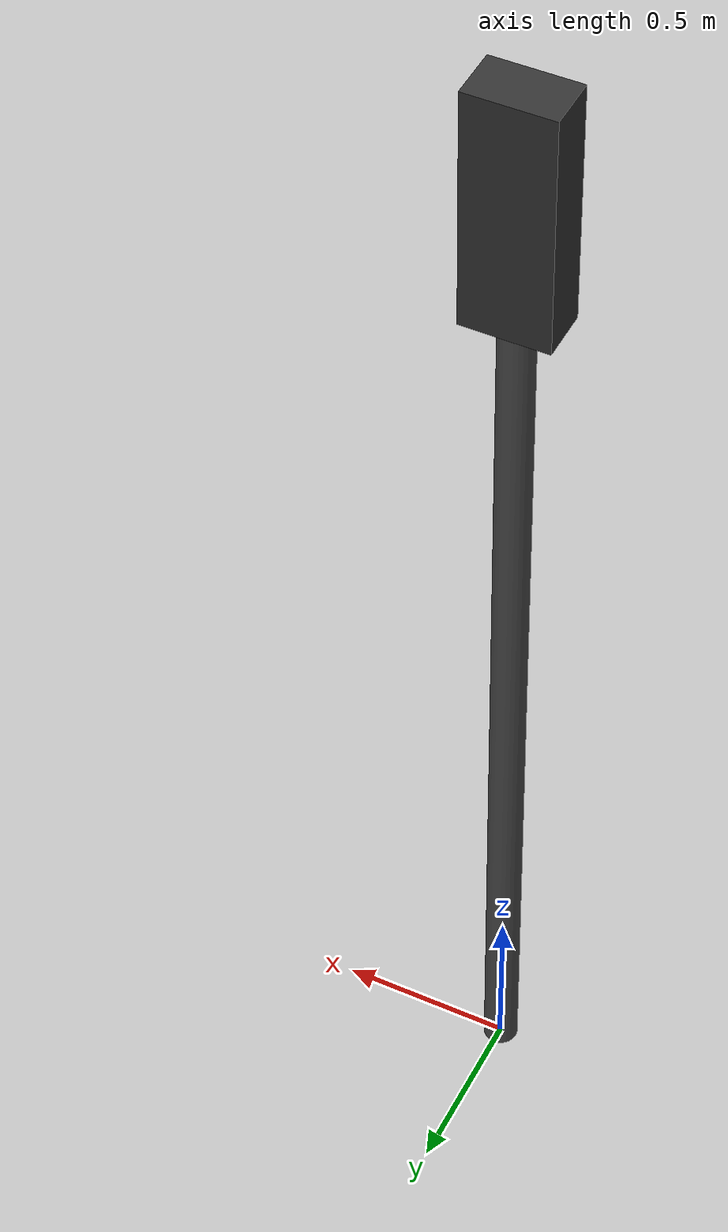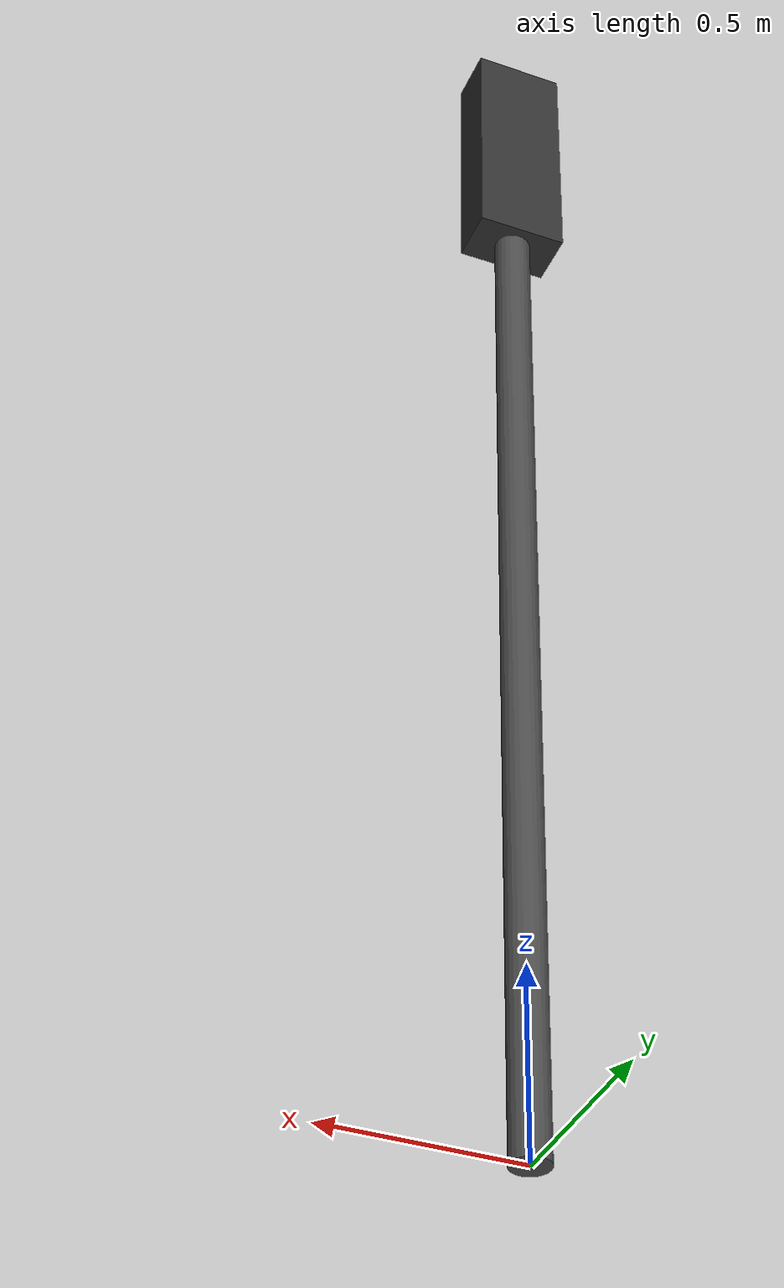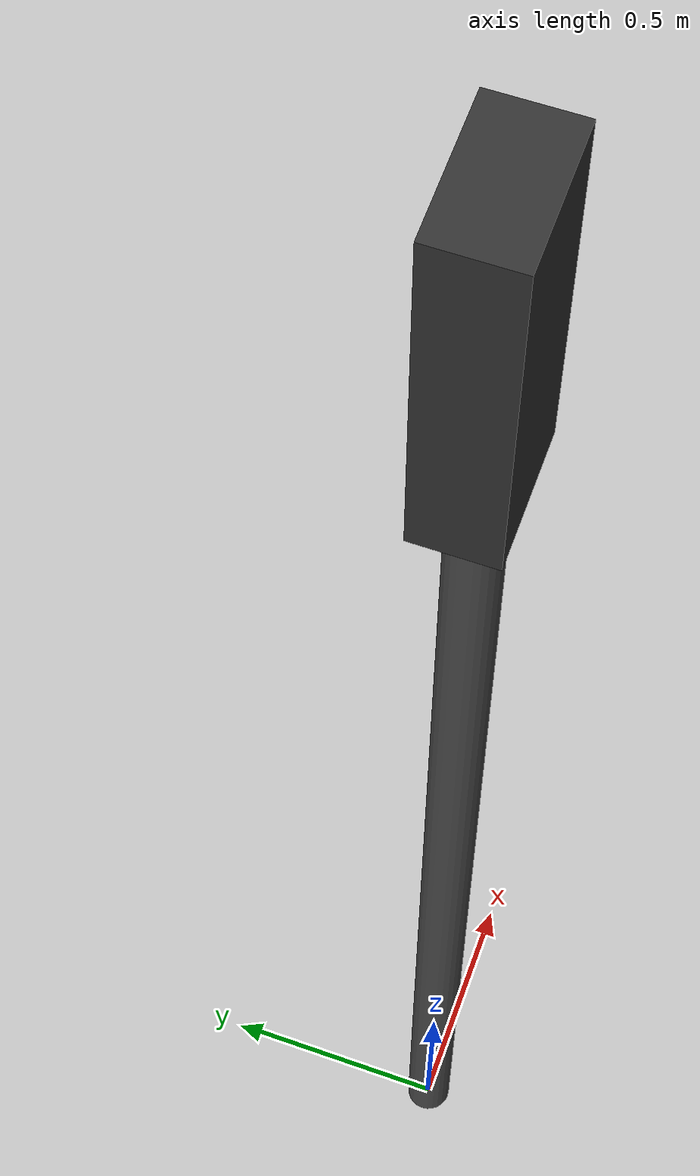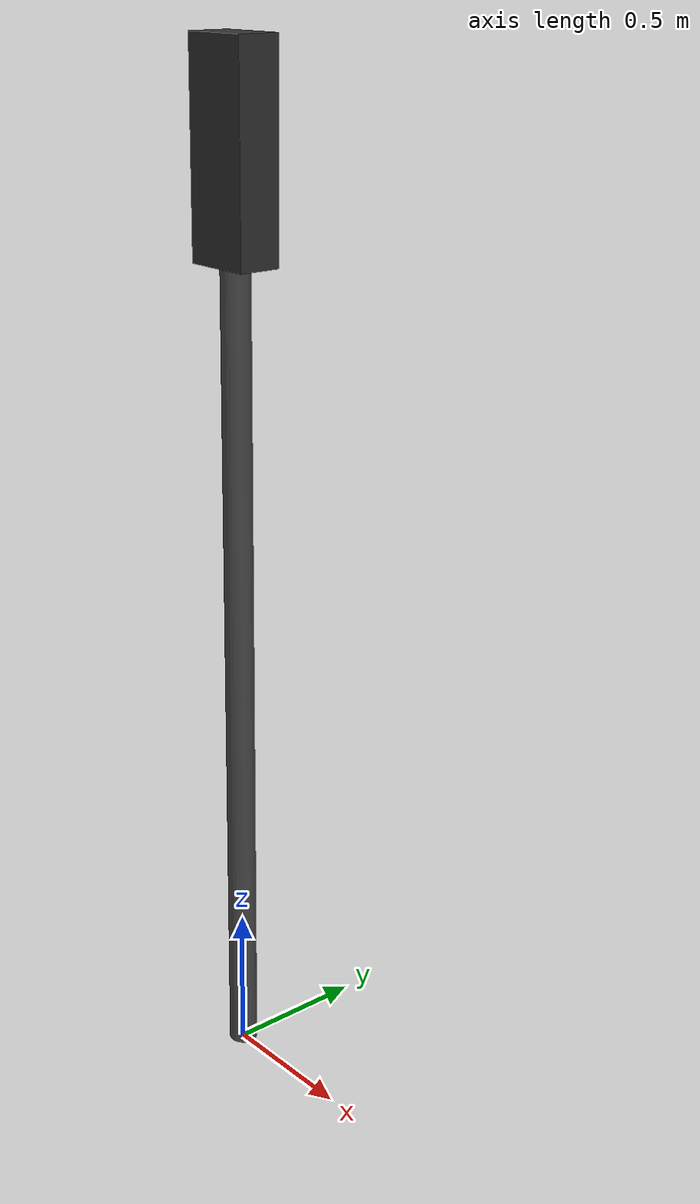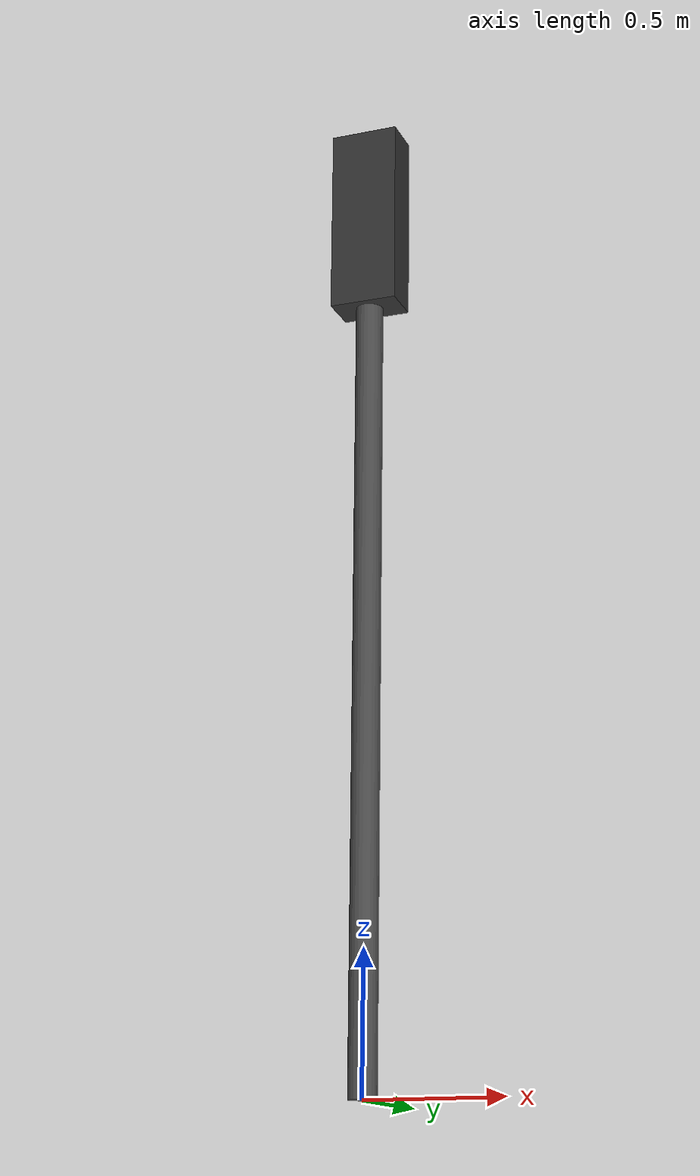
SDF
<?xml version="1.0" ?>
<sdf version="1.6">
  <model name="stop_light_post">
    <static>true</static>

    <!-- Main post -->
    <link name="post">
      <pose>0 0 0 0 0 0</pose>

      <visual name="post_visual">
        <pose>0 0 1.5 0 0 0</pose>
        <geometry>
          <cylinder>
            <radius>0.05</radius>
            <length>3.0</length>
          </cylinder>
        </geometry>
        <material>
          <ambient>0.2 0.2 0.2 1</ambient>
          <diffuse>0.3 0.3 0.3 1</diffuse>
        </material>
      </visual>

      <collision name="post_collision">
        <pose>0 0 1.5 0 0 0</pose>
        <geometry>
          <cylinder>
            <radius>0.05</radius>
            <length>3.0</length>
          </cylinder>
        </geometry>
      </collision>
    </link>

    <!-- Traffic light housing -->
    <link name="light_box">
      <pose>0 0 3.2 0 0 0</pose>

      <visual name="box_visual">
        <geometry>
          <box>
            <size>0.25 0.15 0.7</size>
          </box>
        </geometry>
        <material>
          <ambient>0.1 0.1 0.1 1</ambient>
          <diffuse>0.2 0.2 0.2 1</diffuse>
        </material>
      </visual>

      <!-- Red light (top) -->
      <visual name="red">
        <pose>0 0 0.25 0 0 0</pose>
        <geometry>
          <sphere>
            <radius>0.06</radius>
          </sphere>
        </geometry>
        <material>
          <ambient>0.3 0 0 1</ambient>
          <diffuse>0.8 0 0 1</diffuse>
          <emissive>0.3 0 0 1</emissive>
        </material>
      </visual>

      <!-- Yellow light (middle) -->
      <visual name="yellow">
        <pose>0 0 0 0 0 0</pose>
        <geometry>
          <sphere>
            <radius>0.06</radius>
          </sphere>
        </geometry>
        <material>
          <ambient>0.3 0.3 0 1</ambient>
          <diffuse>0.8 0.8 0 1</diffuse>
          <emissive>0.3 0.3 0 1</emissive>
        </material>
      </visual>

      <!-- Green light (bottom) -->
      <visual name="green">
        <pose>0 0 -0.25 0 0 0</pose>
        <geometry>
          <sphere>
            <radius>0.06</radius>
          </sphere>
        </geometry>
        <material>
          <ambient>0 0.3 0 1</ambient>
          <diffuse>0 0.8 0 1</diffuse>
          <emissive>0 0.3 0 1</emissive>
        </material>
      </visual>

      <collision name="box_collision">
        <geometry>
          <box>
            <size>0.25 0.15 0.7</size>
          </box>
        </geometry>
      </collision>
    </link>

    <!-- Fixed joint between post and light box -->
    <joint name="post_to_box" type="fixed">
      <parent>post</parent>
      <child>light_box</child>
    </joint>
  </model>
</sdf>
